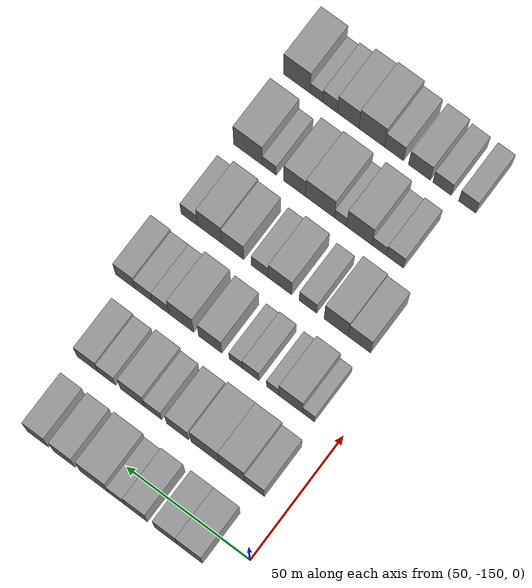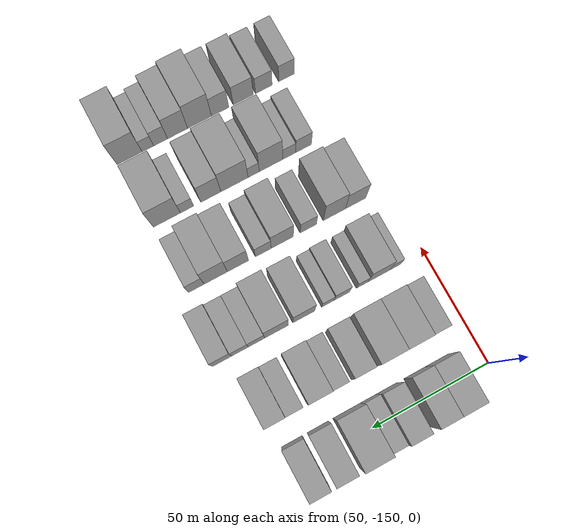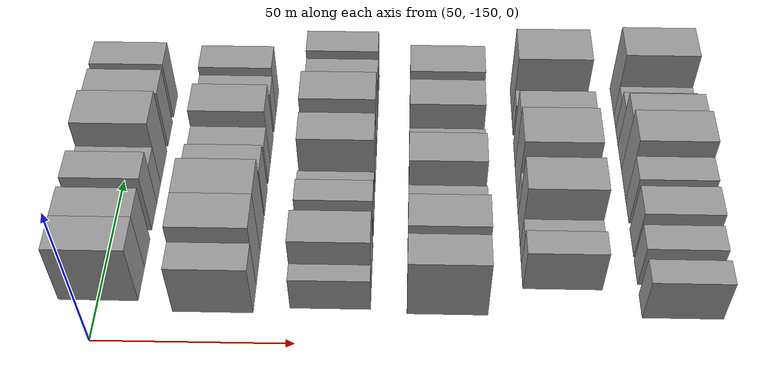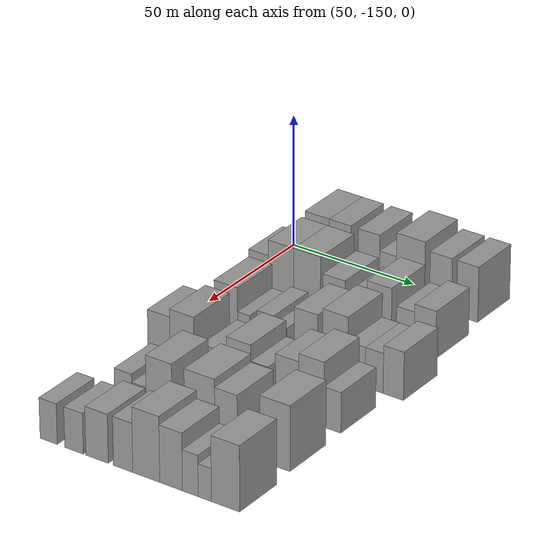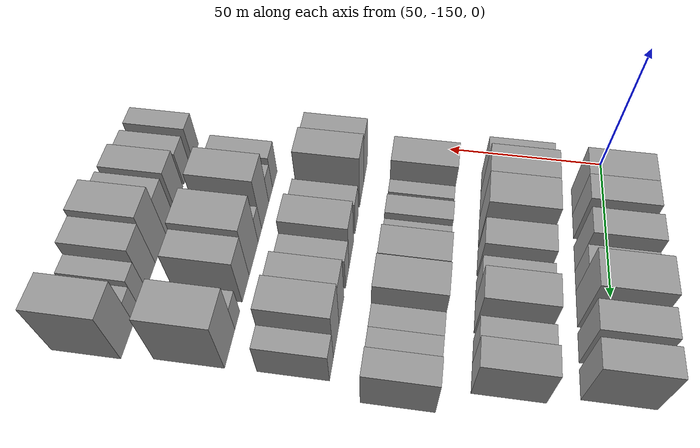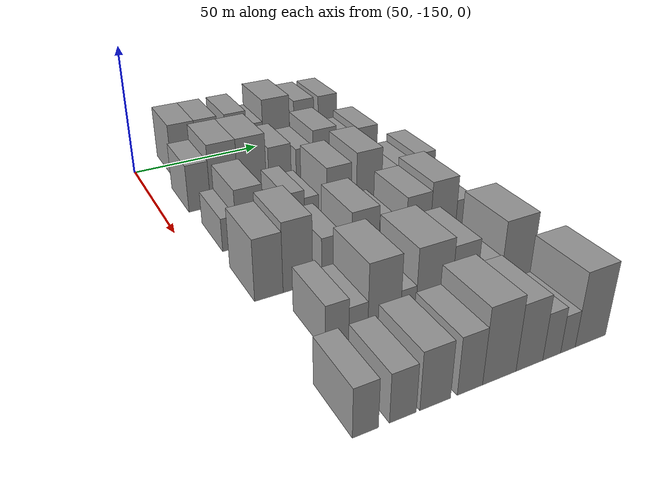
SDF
<sdf version="1.6">
 <world name="default">
  <model name="building_44">
   <static>1</static>
   <pose>50.0000 -133.2774 0 0.000000 0.000000 0.000000</pose>
   <link name="link">
    <pose>0 0 10.50 0 0 0</pose>
    <collision name="collision"><geometry><box><size>20.0000 10.1345 21.0000</size></box></geometry></collision>
    <visual name="visual">
     <cast_shadows>0</cast_shadows>
     <geometry><box><size>20.0000 10.1345 21.0000</size></box></geometry>
     <material>
      <script>
       <uri>model://grey_wall/materials/scripts</uri>
       <uri>model://grey_wall/materials/textures</uri>
       <name>vrc/grey_wall</name>
      </script>
     </material>
    </visual>
   </link>
  </model>
  <model name="building_45">
   <static>1</static>
   <pose>50.0000 -123.7188 0 0.000000 0.000000 0.000000</pose>
   <link name="link">
    <pose>0 0 10.50 0 0 0</pose>
    <collision name="collision"><geometry><box><size>20.0000 8.9827 21.0000</size></box></geometry></collision>
    <visual name="visual">
     <cast_shadows>0</cast_shadows>
     <geometry><box><size>20.0000 8.9827 21.0000</size></box></geometry>
     <material>
      <script>
       <uri>model://grey_wall/materials/scripts</uri>
       <uri>model://grey_wall/materials/textures</uri>
       <name>vrc/grey_wall</name>
      </script>
     </material>
    </visual>
   </link>
  </model>
  <model name="building_46">
   <static>1</static>
   <pose>50.0000 -111.8384 0 0.000000 0.000000 0.000000</pose>
   <link name="link">
    <pose>0 0 10.50 0 0 0</pose>
    <collision name="collision"><geometry><box><size>20.0000 8.7780 21.0000</size></box></geometry></collision>
    <visual name="visual">
     <cast_shadows>0</cast_shadows>
     <geometry><box><size>20.0000 8.7780 21.0000</size></box></geometry>
     <material>
      <script>
       <uri>model://grey_wall/materials/scripts</uri>
       <uri>model://grey_wall/materials/textures</uri>
       <name>vrc/grey_wall</name>
      </script>
     </material>
    </visual>
   </link>
  </model>
  <model name="building_47">
   <static>1</static>
   <pose>50.0000 -104.0275 0 0.000000 0.000000 0.000000</pose>
   <link name="link">
    <pose>0 0 7.50 0 0 0</pose>
    <collision name="collision"><geometry><box><size>20.0000 6.8438 15.0000</size></box></geometry></collision>
    <visual name="visual">
     <cast_shadows>0</cast_shadows>
     <geometry><box><size>20.0000 6.8438 15.0000</size></box></geometry>
     <material>
      <script>
       <uri>model://grey_wall/materials/scripts</uri>
       <uri>model://grey_wall/materials/textures</uri>
       <name>vrc/grey_wall</name>
      </script>
     </material>
    </visual>
   </link>
  </model>
  <model name="building_48">
   <static>1</static>
   <pose>50.0000 -94.8012 0 0.000000 0.000000 0.000000</pose>
   <link name="link">
    <pose>0 0 12.00 0 0 0</pose>
    <collision name="collision"><geometry><box><size>20.0000 11.6089 24.0000</size></box></geometry></collision>
    <visual name="visual">
     <cast_shadows>0</cast_shadows>
     <geometry><box><size>20.0000 11.6089 24.0000</size></box></geometry>
     <material>
      <script>
       <uri>model://grey_wall/materials/scripts</uri>
       <uri>model://grey_wall/materials/textures</uri>
       <name>vrc/grey_wall</name>
      </script>
     </material>
    </visual>
   </link>
  </model>
  <model name="building_49">
   <static>1</static>
   <pose>50.0000 -82.5573 0 0.000000 0.000000 0.000000</pose>
   <link name="link">
    <pose>0 0 10.50 0 0 0</pose>
    <collision name="collision"><geometry><box><size>20.0000 8.8788 21.0000</size></box></geometry></collision>
    <visual name="visual">
     <cast_shadows>0</cast_shadows>
     <geometry><box><size>20.0000 8.8788 21.0000</size></box></geometry>
     <material>
      <script>
       <uri>model://grey_wall/materials/scripts</uri>
       <uri>model://grey_wall/materials/textures</uri>
       <name>vrc/grey_wall</name>
      </script>
     </material>
    </visual>
   </link>
  </model>
  <model name="building_50">
   <static>1</static>
   <pose>50.0000 -71.8427 0 0.000000 0.000000 0.000000</pose>
   <link name="link">
    <pose>0 0 10.50 0 0 0</pose>
    <collision name="collision"><geometry><box><size>20.0000 8.5504 21.0000</size></box></geometry></collision>
    <visual name="visual">
     <cast_shadows>0</cast_shadows>
     <geometry><box><size>20.0000 8.5504 21.0000</size></box></geometry>
     <material>
      <script>
       <uri>model://grey_wall/materials/scripts</uri>
       <uri>model://grey_wall/materials/textures</uri>
       <name>vrc/grey_wall</name>
      </script>
     </material>
    </visual>
   </link>
  </model>
  <model name="building_155">
   <static>1</static>
   <pose>79.0000 -137.3324 0 0.000000 0.000000 0.000000</pose>
   <link name="link">
    <pose>0 0 9.00 0 0 0</pose>
    <collision name="collision"><geometry><box><size>20.0000 7.9895 18.0000</size></box></geometry></collision>
    <visual name="visual">
     <cast_shadows>0</cast_shadows>
     <geometry><box><size>20.0000 7.9895 18.0000</size></box></geometry>
     <material>
      <script>
       <uri>model://grey_wall/materials/scripts</uri>
       <uri>model://grey_wall/materials/textures</uri>
       <name>vrc/grey_wall</name>
      </script>
     </material>
    </visual>
   </link>
  </model>
  <model name="building_156">
   <static>1</static>
   <pose>79.0000 -128.0997 0 0.000000 0.000000 0.000000</pose>
   <link name="link">
    <pose>0 0 12.00 0 0 0</pose>
    <collision name="collision"><geometry><box><size>20.0000 10.4760 24.0000</size></box></geometry></collision>
    <visual name="visual">
     <cast_shadows>0</cast_shadows>
     <geometry><box><size>20.0000 10.4760 24.0000</size></box></geometry>
     <material>
      <script>
       <uri>model://grey_wall/materials/scripts</uri>
       <uri>model://grey_wall/materials/textures</uri>
       <name>vrc/grey_wall</name>
      </script>
     </material>
    </visual>
   </link>
  </model>
  <model name="building_157">
   <static>1</static>
   <pose>79.0000 -117.3535 0 0.000000 0.000000 0.000000</pose>
   <link name="link">
    <pose>0 0 12.00 0 0 0</pose>
    <collision name="collision"><geometry><box><size>20.0000 11.0164 24.0000</size></box></geometry></collision>
    <visual name="visual">
     <cast_shadows>0</cast_shadows>
     <geometry><box><size>20.0000 11.0164 24.0000</size></box></geometry>
     <material>
      <script>
       <uri>model://grey_wall/materials/scripts</uri>
       <uri>model://grey_wall/materials/textures</uri>
       <name>vrc/grey_wall</name>
      </script>
     </material>
    </visual>
   </link>
  </model>
  <model name="building_158">
   <static>1</static>
   <pose>79.0000 -106.3740 0 0.000000 0.000000 0.000000</pose>
   <link name="link">
    <pose>0 0 9.00 0 0 0</pose>
    <collision name="collision"><geometry><box><size>20.0000 8.9425 18.0000</size></box></geometry></collision>
    <visual name="visual">
     <cast_shadows>0</cast_shadows>
     <geometry><box><size>20.0000 8.9425 18.0000</size></box></geometry>
     <material>
      <script>
       <uri>model://grey_wall/materials/scripts</uri>
       <uri>model://grey_wall/materials/textures</uri>
       <name>vrc/grey_wall</name>
      </script>
     </material>
    </visual>
   </link>
  </model>
  <model name="building_159">
   <static>1</static>
   <pose>79.0000 -96.4477 0 0.000000 0.000000 0.000000</pose>
   <link name="link">
    <pose>0 0 7.50 0 0 0</pose>
    <collision name="collision"><geometry><box><size>20.0000 6.9102 15.0000</size></box></geometry></collision>
    <visual name="visual">
     <cast_shadows>0</cast_shadows>
     <geometry><box><size>20.0000 6.9102 15.0000</size></box></geometry>
     <material>
      <script>
       <uri>model://grey_wall/materials/scripts</uri>
       <uri>model://grey_wall/materials/textures</uri>
       <name>vrc/grey_wall</name>
      </script>
     </material>
    </visual>
   </link>
  </model>
  <model name="building_160">
   <static>1</static>
   <pose>79.0000 -88.0792 0 0.000000 0.000000 0.000000</pose>
   <link name="link">
    <pose>0 0 10.50 0 0 0</pose>
    <collision name="collision"><geometry><box><size>20.0000 9.8268 21.0000</size></box></geometry></collision>
    <visual name="visual">
     <cast_shadows>0</cast_shadows>
     <geometry><box><size>20.0000 9.8268 21.0000</size></box></geometry>
     <material>
      <script>
       <uri>model://grey_wall/materials/scripts</uri>
       <uri>model://grey_wall/materials/textures</uri>
       <name>vrc/grey_wall</name>
      </script>
     </material>
    </visual>
   </link>
  </model>
  <model name="building_161">
   <static>1</static>
   <pose>79.0000 -77.5541 0 0.000000 0.000000 0.000000</pose>
   <link name="link">
    <pose>0 0 7.50 0 0 0</pose>
    <collision name="collision"><geometry><box><size>20.0000 7.2233 15.0000</size></box></geometry></collision>
    <visual name="visual">
     <cast_shadows>0</cast_shadows>
     <geometry><box><size>20.0000 7.2233 15.0000</size></box></geometry>
     <material>
      <script>
       <uri>model://grey_wall/materials/scripts</uri>
       <uri>model://grey_wall/materials/textures</uri>
       <name>vrc/grey_wall</name>
      </script>
     </material>
    </visual>
   </link>
  </model>
  <model name="building_162">
   <static>1</static>
   <pose>79.0000 -69.6732 0 0.000000 0.000000 0.000000</pose>
   <link name="link">
    <pose>0 0 9.00 0 0 0</pose>
    <collision name="collision"><geometry><box><size>20.0000 8.5386 18.0000</size></box></geometry></collision>
    <visual name="visual">
     <cast_shadows>0</cast_shadows>
     <geometry><box><size>20.0000 8.5386 18.0000</size></box></geometry>
     <material>
      <script>
       <uri>model://grey_wall/materials/scripts</uri>
       <uri>model://grey_wall/materials/textures</uri>
       <name>vrc/grey_wall</name>
      </script>
     </material>
    </visual>
   </link>
  </model>
  <model name="building_268">
   <static>1</static>
   <pose>108.0000 -137.3046 0 0.000000 0.000000 0.000000</pose>
   <link name="link">
    <pose>0 0 6.00 0 0 0</pose>
    <collision name="collision"><geometry><box><size>20.0000 4.8979 12.0000</size></box></geometry></collision>
    <visual name="visual">
     <cast_shadows>0</cast_shadows>
     <geometry><box><size>20.0000 4.8979 12.0000</size></box></geometry>
     <material>
      <script>
       <uri>model://grey_wall/materials/scripts</uri>
       <uri>model://grey_wall/materials/textures</uri>
       <name>vrc/grey_wall</name>
      </script>
     </material>
    </visual>
   </link>
  </model>
  <model name="building_269">
   <static>1</static>
   <pose>108.0000 -130.0795 0 0.000000 0.000000 0.000000</pose>
   <link name="link">
    <pose>0 0 10.50 0 0 0</pose>
    <collision name="collision"><geometry><box><size>20.0000 9.5524 21.0000</size></box></geometry></collision>
    <visual name="visual">
     <cast_shadows>0</cast_shadows>
     <geometry><box><size>20.0000 9.5524 21.0000</size></box></geometry>
     <material>
      <script>
       <uri>model://grey_wall/materials/scripts</uri>
       <uri>model://grey_wall/materials/textures</uri>
       <name>vrc/grey_wall</name>
      </script>
     </material>
    </visual>
   </link>
  </model>
  <model name="building_270">
   <static>1</static>
   <pose>108.0000 -122.8451 0 0.000000 0.000000 0.000000</pose>
   <link name="link">
    <pose>0 0 6.00 0 0 0</pose>
    <collision name="collision"><geometry><box><size>20.0000 4.9163 12.0000</size></box></geometry></collision>
    <visual name="visual">
     <cast_shadows>0</cast_shadows>
     <geometry><box><size>20.0000 4.9163 12.0000</size></box></geometry>
     <material>
      <script>
       <uri>model://grey_wall/materials/scripts</uri>
       <uri>model://grey_wall/materials/textures</uri>
       <name>vrc/grey_wall</name>
      </script>
     </material>
    </visual>
   </link>
  </model>
  <model name="building_271">
   <static>1</static>
   <pose>108.0000 -113.9881 0 0.000000 0.000000 0.000000</pose>
   <link name="link">
    <pose>0 0 7.50 0 0 0</pose>
    <collision name="collision"><geometry><box><size>20.0000 6.7977 15.0000</size></box></geometry></collision>
    <visual name="visual">
     <cast_shadows>0</cast_shadows>
     <geometry><box><size>20.0000 6.7977 15.0000</size></box></geometry>
     <material>
      <script>
       <uri>model://grey_wall/materials/scripts</uri>
       <uri>model://grey_wall/materials/textures</uri>
       <name>vrc/grey_wall</name>
      </script>
     </material>
    </visual>
   </link>
  </model>
  <model name="building_272">
   <static>1</static>
   <pose>108.0000 -107.9526 0 0.000000 0.000000 0.000000</pose>
   <link name="link">
    <pose>0 0 6.00 0 0 0</pose>
    <collision name="collision"><geometry><box><size>20.0000 5.2732 12.0000</size></box></geometry></collision>
    <visual name="visual">
     <cast_shadows>0</cast_shadows>
     <geometry><box><size>20.0000 5.2732 12.0000</size></box></geometry>
     <material>
      <script>
       <uri>model://grey_wall/materials/scripts</uri>
       <uri>model://grey_wall/materials/textures</uri>
       <name>vrc/grey_wall</name>
      </script>
     </material>
    </visual>
   </link>
  </model>
  <model name="building_273">
   <static>1</static>
   <pose>108.0000 -97.6003 0 0.000000 0.000000 0.000000</pose>
   <link name="link">
    <pose>0 0 10.50 0 0 0</pose>
    <collision name="collision"><geometry><box><size>20.0000 9.4315 21.0000</size></box></geometry></collision>
    <visual name="visual">
     <cast_shadows>0</cast_shadows>
     <geometry><box><size>20.0000 9.4315 21.0000</size></box></geometry>
     <material>
      <script>
       <uri>model://grey_wall/materials/scripts</uri>
       <uri>model://grey_wall/materials/textures</uri>
       <name>vrc/grey_wall</name>
      </script>
     </material>
    </visual>
   </link>
  </model>
  <model name="building_274">
   <static>1</static>
   <pose>108.0000 -85.8701 0 0.000000 0.000000 0.000000</pose>
   <link name="link">
    <pose>0 0 12.00 0 0 0</pose>
    <collision name="collision"><geometry><box><size>20.0000 10.0287 24.0000</size></box></geometry></collision>
    <visual name="visual">
     <cast_shadows>0</cast_shadows>
     <geometry><box><size>20.0000 10.0287 24.0000</size></box></geometry>
     <material>
      <script>
       <uri>model://grey_wall/materials/scripts</uri>
       <uri>model://grey_wall/materials/textures</uri>
       <name>vrc/grey_wall</name>
      </script>
     </material>
    </visual>
   </link>
  </model>
  <model name="building_275">
   <static>1</static>
   <pose>108.0000 -77.4149 0 0.000000 0.000000 0.000000</pose>
   <link name="link">
    <pose>0 0 7.50 0 0 0</pose>
    <collision name="collision"><geometry><box><size>20.0000 6.8818 15.0000</size></box></geometry></collision>
    <visual name="visual">
     <cast_shadows>0</cast_shadows>
     <geometry><box><size>20.0000 6.8818 15.0000</size></box></geometry>
     <material>
      <script>
       <uri>model://grey_wall/materials/scripts</uri>
       <uri>model://grey_wall/materials/textures</uri>
       <name>vrc/grey_wall</name>
      </script>
     </material>
    </visual>
   </link>
  </model>
  <model name="building_276">
   <static>1</static>
   <pose>108.0000 -70.4315 0 0.000000 0.000000 0.000000</pose>
   <link name="link">
    <pose>0 0 7.50 0 0 0</pose>
    <collision name="collision"><geometry><box><size>20.0000 7.0849 15.0000</size></box></geometry></collision>
    <visual name="visual">
     <cast_shadows>0</cast_shadows>
     <geometry><box><size>20.0000 7.0849 15.0000</size></box></geometry>
     <material>
      <script>
       <uri>model://grey_wall/materials/scripts</uri>
       <uri>model://grey_wall/materials/textures</uri>
       <name>vrc/grey_wall</name>
      </script>
     </material>
    </visual>
   </link>
  </model>
  <model name="building_277">
   <static>1</static>
   <pose>108.0000 -62.9031 0 0.000000 0.000000 0.000000</pose>
   <link name="link">
    <pose>0 0 9.00 0 0 0</pose>
    <collision name="collision"><geometry><box><size>20.0000 7.9720 18.0000</size></box></geometry></collision>
    <visual name="visual">
     <cast_shadows>0</cast_shadows>
     <geometry><box><size>20.0000 7.9720 18.0000</size></box></geometry>
     <material>
      <script>
       <uri>model://grey_wall/materials/scripts</uri>
       <uri>model://grey_wall/materials/textures</uri>
       <name>vrc/grey_wall</name>
      </script>
     </material>
    </visual>
   </link>
  </model>
  <model name="building_377">
   <static>1</static>
   <pose>137.0000 -136.3236 0 0.000000 0.000000 0.000000</pose>
   <link name="link">
    <pose>0 0 10.50 0 0 0</pose>
    <collision name="collision"><geometry><box><size>20.0000 9.0582 21.0000</size></box></geometry></collision>
    <visual name="visual">
     <cast_shadows>0</cast_shadows>
     <geometry><box><size>20.0000 9.0582 21.0000</size></box></geometry>
     <material>
      <script>
       <uri>model://grey_wall/materials/scripts</uri>
       <uri>model://grey_wall/materials/textures</uri>
       <name>vrc/grey_wall</name>
      </script>
     </material>
    </visual>
   </link>
  </model>
  <model name="building_378">
   <static>1</static>
   <pose>137.0000 -126.9315 0 0.000000 0.000000 0.000000</pose>
   <link name="link">
    <pose>0 0 12.00 0 0 0</pose>
    <collision name="collision"><geometry><box><size>20.0000 9.7260 24.0000</size></box></geometry></collision>
    <visual name="visual">
     <cast_shadows>0</cast_shadows>
     <geometry><box><size>20.0000 9.7260 24.0000</size></box></geometry>
     <material>
      <script>
       <uri>model://grey_wall/materials/scripts</uri>
       <uri>model://grey_wall/materials/textures</uri>
       <name>vrc/grey_wall</name>
      </script>
     </material>
    </visual>
   </link>
  </model>
  <model name="building_379">
   <static>1</static>
   <pose>137.0000 -115.4970 0 0.000000 0.000000 0.000000</pose>
   <link name="link">
    <pose>0 0 7.50 0 0 0</pose>
    <collision name="collision"><geometry><box><size>20.0000 7.1431 15.0000</size></box></geometry></collision>
    <visual name="visual">
     <cast_shadows>0</cast_shadows>
     <geometry><box><size>20.0000 7.1431 15.0000</size></box></geometry>
     <material>
      <script>
       <uri>model://grey_wall/materials/scripts</uri>
       <uri>model://grey_wall/materials/textures</uri>
       <name>vrc/grey_wall</name>
      </script>
     </material>
    </visual>
   </link>
  </model>
  <model name="building_380">
   <static>1</static>
   <pose>137.0000 -104.0986 0 0.000000 0.000000 0.000000</pose>
   <link name="link">
    <pose>0 0 10.50 0 0 0</pose>
    <collision name="collision"><geometry><box><size>20.0000 9.6535 21.0000</size></box></geometry></collision>
    <visual name="visual">
     <cast_shadows>0</cast_shadows>
     <geometry><box><size>20.0000 9.6535 21.0000</size></box></geometry>
     <material>
      <script>
       <uri>model://grey_wall/materials/scripts</uri>
       <uri>model://grey_wall/materials/textures</uri>
       <name>vrc/grey_wall</name>
      </script>
     </material>
    </visual>
   </link>
  </model>
  <model name="building_381">
   <static>1</static>
   <pose>137.0000 -95.8553 0 0.000000 0.000000 0.000000</pose>
   <link name="link">
    <pose>0 0 7.50 0 0 0</pose>
    <collision name="collision"><geometry><box><size>20.0000 6.8331 15.0000</size></box></geometry></collision>
    <visual name="visual">
     <cast_shadows>0</cast_shadows>
     <geometry><box><size>20.0000 6.8331 15.0000</size></box></geometry>
     <material>
      <script>
       <uri>model://grey_wall/materials/scripts</uri>
       <uri>model://grey_wall/materials/textures</uri>
       <name>vrc/grey_wall</name>
      </script>
     </material>
    </visual>
   </link>
  </model>
  <model name="building_382">
   <static>1</static>
   <pose>137.0000 -84.8691 0 0.000000 0.000000 0.000000</pose>
   <link name="link">
    <pose>0 0 10.50 0 0 0</pose>
    <collision name="collision"><geometry><box><size>20.0000 9.1394 21.0000</size></box></geometry></collision>
    <visual name="visual">
     <cast_shadows>0</cast_shadows>
     <geometry><box><size>20.0000 9.1394 21.0000</size></box></geometry>
     <material>
      <script>
       <uri>model://grey_wall/materials/scripts</uri>
       <uri>model://grey_wall/materials/textures</uri>
       <name>vrc/grey_wall</name>
      </script>
     </material>
    </visual>
   </link>
  </model>
  <model name="building_383">
   <static>1</static>
   <pose>137.0000 -75.3482 0 0.000000 0.000000 0.000000</pose>
   <link name="link">
    <pose>0 0 12.00 0 0 0</pose>
    <collision name="collision"><geometry><box><size>20.0000 9.9024 24.0000</size></box></geometry></collision>
    <visual name="visual">
     <cast_shadows>0</cast_shadows>
     <geometry><box><size>20.0000 9.9024 24.0000</size></box></geometry>
     <material>
      <script>
       <uri>model://grey_wall/materials/scripts</uri>
       <uri>model://grey_wall/materials/textures</uri>
       <name>vrc/grey_wall</name>
      </script>
     </material>
    </visual>
   </link>
  </model>
  <model name="building_384">
   <static>1</static>
   <pose>137.0000 -67.0663 0 0.000000 0.000000 0.000000</pose>
   <link name="link">
    <pose>0 0 7.50 0 0 0</pose>
    <collision name="collision"><geometry><box><size>20.0000 6.6614 15.0000</size></box></geometry></collision>
    <visual name="visual">
     <cast_shadows>0</cast_shadows>
     <geometry><box><size>20.0000 6.6614 15.0000</size></box></geometry>
     <material>
      <script>
       <uri>model://grey_wall/materials/scripts</uri>
       <uri>model://grey_wall/materials/textures</uri>
       <name>vrc/grey_wall</name>
      </script>
     </material>
    </visual>
   </link>
  </model>
  <model name="building_490">
   <static>1</static>
   <pose>166.0000 -129.2789 0 0.000000 0.000000 0.000000</pose>
   <link name="link">
    <pose>0 0 7.50 0 0 0</pose>
    <collision name="collision"><geometry><box><size>20.0000 7.0332 15.0000</size></box></geometry></collision>
    <visual name="visual">
     <cast_shadows>0</cast_shadows>
     <geometry><box><size>20.0000 7.0332 15.0000</size></box></geometry>
     <material>
      <script>
       <uri>model://grey_wall/materials/scripts</uri>
       <uri>model://grey_wall/materials/textures</uri>
       <name>vrc/grey_wall</name>
      </script>
     </material>
    </visual>
   </link>
  </model>
  <model name="building_491">
   <static>1</static>
   <pose>166.0000 -122.8763 0 0.000000 0.000000 0.000000</pose>
   <link name="link">
    <pose>0 0 6.00 0 0 0</pose>
    <collision name="collision"><geometry><box><size>20.0000 5.7720 12.0000</size></box></geometry></collision>
    <visual name="visual">
     <cast_shadows>0</cast_shadows>
     <geometry><box><size>20.0000 5.7720 12.0000</size></box></geometry>
     <material>
      <script>
       <uri>model://grey_wall/materials/scripts</uri>
       <uri>model://grey_wall/materials/textures</uri>
       <name>vrc/grey_wall</name>
      </script>
     </material>
    </visual>
   </link>
  </model>
  <model name="building_492">
   <static>1</static>
   <pose>166.0000 -114.8210 0 0.000000 0.000000 0.000000</pose>
   <link name="link">
    <pose>0 0 12.00 0 0 0</pose>
    <collision name="collision"><geometry><box><size>20.0000 10.3385 24.0000</size></box></geometry></collision>
    <visual name="visual">
     <cast_shadows>0</cast_shadows>
     <geometry><box><size>20.0000 10.3385 24.0000</size></box></geometry>
     <material>
      <script>
       <uri>model://grey_wall/materials/scripts</uri>
       <uri>model://grey_wall/materials/textures</uri>
       <name>vrc/grey_wall</name>
      </script>
     </material>
    </visual>
   </link>
  </model>
  <model name="building_493">
   <static>1</static>
   <pose>166.0000 -107.1820 0 0.000000 0.000000 0.000000</pose>
   <link name="link">
    <pose>0 0 6.00 0 0 0</pose>
    <collision name="collision"><geometry><box><size>20.0000 4.9396 12.0000</size></box></geometry></collision>
    <visual name="visual">
     <cast_shadows>0</cast_shadows>
     <geometry><box><size>20.0000 4.9396 12.0000</size></box></geometry>
     <material>
      <script>
       <uri>model://grey_wall/materials/scripts</uri>
       <uri>model://grey_wall/materials/textures</uri>
       <name>vrc/grey_wall</name>
      </script>
     </material>
    </visual>
   </link>
  </model>
  <model name="building_494">
   <static>1</static>
   <pose>166.0000 -98.7192 0 0.000000 0.000000 0.000000</pose>
   <link name="link">
    <pose>0 0 12.00 0 0 0</pose>
    <collision name="collision"><geometry><box><size>20.0000 11.9861 24.0000</size></box></geometry></collision>
    <visual name="visual">
     <cast_shadows>0</cast_shadows>
     <geometry><box><size>20.0000 11.9861 24.0000</size></box></geometry>
     <material>
      <script>
       <uri>model://grey_wall/materials/scripts</uri>
       <uri>model://grey_wall/materials/textures</uri>
       <name>vrc/grey_wall</name>
      </script>
     </material>
    </visual>
   </link>
  </model>
  <model name="building_495">
   <static>1</static>
   <pose>166.0000 -88.3262 0 0.000000 0.000000 0.000000</pose>
   <link name="link">
    <pose>0 0 10.50 0 0 0</pose>
    <collision name="collision"><geometry><box><size>20.0000 8.7999 21.0000</size></box></geometry></collision>
    <visual name="visual">
     <cast_shadows>0</cast_shadows>
     <geometry><box><size>20.0000 8.7999 21.0000</size></box></geometry>
     <material>
      <script>
       <uri>model://grey_wall/materials/scripts</uri>
       <uri>model://grey_wall/materials/textures</uri>
       <name>vrc/grey_wall</name>
      </script>
     </material>
    </visual>
   </link>
  </model>
  <model name="building_496">
   <static>1</static>
   <pose>166.0000 -78.0328 0 0.000000 0.000000 0.000000</pose>
   <link name="link">
    <pose>0 0 6.00 0 0 0</pose>
    <collision name="collision"><geometry><box><size>20.0000 5.7869 12.0000</size></box></geometry></collision>
    <visual name="visual">
     <cast_shadows>0</cast_shadows>
     <geometry><box><size>20.0000 5.7869 12.0000</size></box></geometry>
     <material>
      <script>
       <uri>model://grey_wall/materials/scripts</uri>
       <uri>model://grey_wall/materials/textures</uri>
       <name>vrc/grey_wall</name>
      </script>
     </material>
    </visual>
   </link>
  </model>
  <model name="building_497">
   <static>1</static>
   <pose>166.0000 -69.2736 0 0.000000 0.000000 0.000000</pose>
   <link name="link">
    <pose>0 0 12.00 0 0 0</pose>
    <collision name="collision"><geometry><box><size>20.0000 11.7315 24.0000</size></box></geometry></collision>
    <visual name="visual">
     <cast_shadows>0</cast_shadows>
     <geometry><box><size>20.0000 11.7315 24.0000</size></box></geometry>
     <material>
      <script>
       <uri>model://grey_wall/materials/scripts</uri>
       <uri>model://grey_wall/materials/textures</uri>
       <name>vrc/grey_wall</name>
      </script>
     </material>
    </visual>
   </link>
  </model>
  <model name="building_596">
   <static>1</static>
   <pose>195.0000 -137.4143 0 0.000000 0.000000 0.000000</pose>
   <link name="link">
    <pose>0 0 7.50 0 0 0</pose>
    <collision name="collision"><geometry><box><size>20.0000 6.9623 15.0000</size></box></geometry></collision>
    <visual name="visual">
     <cast_shadows>0</cast_shadows>
     <geometry><box><size>20.0000 6.9623 15.0000</size></box></geometry>
     <material>
      <script>
       <uri>model://grey_wall/materials/scripts</uri>
       <uri>model://grey_wall/materials/textures</uri>
       <name>vrc/grey_wall</name>
      </script>
     </material>
    </visual>
   </link>
  </model>
  <model name="building_597">
   <static>1</static>
   <pose>195.0000 -127.1891 0 0.000000 0.000000 0.000000</pose>
   <link name="link">
    <pose>0 0 7.50 0 0 0</pose>
    <collision name="collision"><geometry><box><size>20.0000 7.4881 15.0000</size></box></geometry></collision>
    <visual name="visual">
     <cast_shadows>0</cast_shadows>
     <geometry><box><size>20.0000 7.4881 15.0000</size></box></geometry>
     <material>
      <script>
       <uri>model://grey_wall/materials/scripts</uri>
       <uri>model://grey_wall/materials/textures</uri>
       <name>vrc/grey_wall</name>
      </script>
     </material>
    </visual>
   </link>
  </model>
  <model name="building_598">
   <static>1</static>
   <pose>195.0000 -117.9696 0 0.000000 0.000000 0.000000</pose>
   <link name="link">
    <pose>0 0 9.00 0 0 0</pose>
    <collision name="collision"><geometry><box><size>20.0000 8.9509 18.0000</size></box></geometry></collision>
    <visual name="visual">
     <cast_shadows>0</cast_shadows>
     <geometry><box><size>20.0000 8.9509 18.0000</size></box></geometry>
     <material>
      <script>
       <uri>model://grey_wall/materials/scripts</uri>
       <uri>model://grey_wall/materials/textures</uri>
       <name>vrc/grey_wall</name>
      </script>
     </material>
    </visual>
   </link>
  </model>
  <model name="building_599">
   <static>1</static>
   <pose>195.0000 -107.6356 0 0.000000 0.000000 0.000000</pose>
   <link name="link">
    <pose>0 0 9.00 0 0 0</pose>
    <collision name="collision"><geometry><box><size>20.0000 7.7173 18.0000</size></box></geometry></collision>
    <visual name="visual">
     <cast_shadows>0</cast_shadows>
     <geometry><box><size>20.0000 7.7173 18.0000</size></box></geometry>
     <material>
      <script>
       <uri>model://grey_wall/materials/scripts</uri>
       <uri>model://grey_wall/materials/textures</uri>
       <name>vrc/grey_wall</name>
      </script>
     </material>
    </visual>
   </link>
  </model>
  <model name="building_600">
   <static>1</static>
   <pose>195.0000 -98.4789 0 0.000000 0.000000 0.000000</pose>
   <link name="link">
    <pose>0 0 12.00 0 0 0</pose>
    <collision name="collision"><geometry><box><size>20.0000 10.5960 24.0000</size></box></geometry></collision>
    <visual name="visual">
     <cast_shadows>0</cast_shadows>
     <geometry><box><size>20.0000 10.5960 24.0000</size></box></geometry>
     <material>
      <script>
       <uri>model://grey_wall/materials/scripts</uri>
       <uri>model://grey_wall/materials/textures</uri>
       <name>vrc/grey_wall</name>
      </script>
     </material>
    </visual>
   </link>
  </model>
  <model name="building_601">
   <static>1</static>
   <pose>195.0000 -88.7536 0 0.000000 0.000000 0.000000</pose>
   <link name="link">
    <pose>0 0 10.50 0 0 0</pose>
    <collision name="collision"><geometry><box><size>20.0000 8.8547 21.0000</size></box></geometry></collision>
    <visual name="visual">
     <cast_shadows>0</cast_shadows>
     <geometry><box><size>20.0000 8.8547 21.0000</size></box></geometry>
     <material>
      <script>
       <uri>model://grey_wall/materials/scripts</uri>
       <uri>model://grey_wall/materials/textures</uri>
       <name>vrc/grey_wall</name>
      </script>
     </material>
    </visual>
   </link>
  </model>
  <model name="building_602">
   <static>1</static>
   <pose>195.0000 -81.2713 0 0.000000 0.000000 0.000000</pose>
   <link name="link">
    <pose>0 0 7.50 0 0 0</pose>
    <collision name="collision"><geometry><box><size>20.0000 6.1099 15.0000</size></box></geometry></collision>
    <visual name="visual">
     <cast_shadows>0</cast_shadows>
     <geometry><box><size>20.0000 6.1099 15.0000</size></box></geometry>
     <material>
      <script>
       <uri>model://grey_wall/materials/scripts</uri>
       <uri>model://grey_wall/materials/textures</uri>
       <name>vrc/grey_wall</name>
      </script>
     </material>
    </visual>
   </link>
  </model>
  <model name="building_603">
   <static>1</static>
   <pose>195.0000 -75.6764 0 0.000000 0.000000 0.000000</pose>
   <link name="link">
    <pose>0 0 6.00 0 0 0</pose>
    <collision name="collision"><geometry><box><size>20.0000 5.0800 12.0000</size></box></geometry></collision>
    <visual name="visual">
     <cast_shadows>0</cast_shadows>
     <geometry><box><size>20.0000 5.0800 12.0000</size></box></geometry>
     <material>
      <script>
       <uri>model://grey_wall/materials/scripts</uri>
       <uri>model://grey_wall/materials/textures</uri>
       <name>vrc/grey_wall</name>
      </script>
     </material>
    </visual>
   </link>
  </model>
  <model name="building_604">
   <static>1</static>
   <pose>195.0000 -67.6732 0 0.000000 0.000000 0.000000</pose>
   <link name="link">
    <pose>0 0 12.00 0 0 0</pose>
    <collision name="collision"><geometry><box><size>20.0000 10.9264 24.0000</size></box></geometry></collision>
    <visual name="visual">
     <cast_shadows>0</cast_shadows>
     <geometry><box><size>20.0000 10.9264 24.0000</size></box></geometry>
     <material>
      <script>
       <uri>model://grey_wall/materials/scripts</uri>
       <uri>model://grey_wall/materials/textures</uri>
       <name>vrc/grey_wall</name>
      </script>
     </material>
    </visual>
   </link>
  </model>
 </world>
</sdf>
